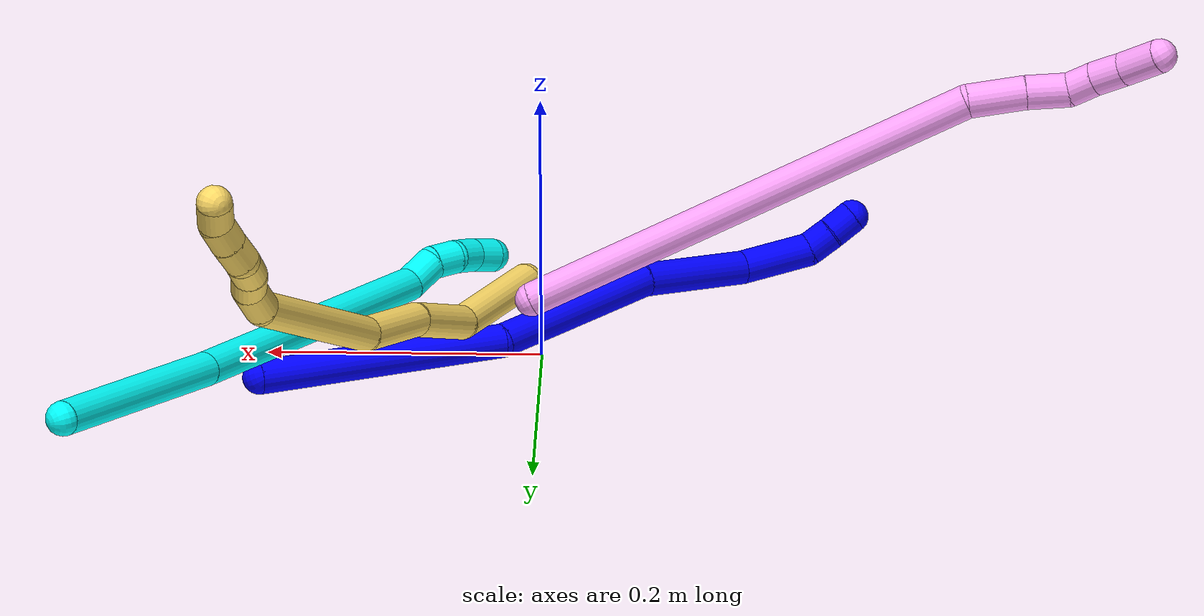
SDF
<sdf version="1.7">
 <world name="default">
  <model name="photoneo_s_sensor">
   <static>1</static>
   <pose>0 0 2 1.57079 1.57079 3.14159</pose>
   <link name="link">
    <inertial><mass>0.1</mass></inertial>
    <sensor name="sensor" type="depth">
     <update_rate>30</update_rate>
     <camera>
      <horizontal_fov>1.22</horizontal_fov>
      <image><width>1920</width><height>1200</height><format>B8G8R8</format></image>
      <clip><near>0.1</near><far>4</far></clip>
      <depth_camera><output>points</output></depth_camera>
     </camera>
     <plugin name="camera_plugin" filename="libgazebo_ros_depth_camera.so">
      <baseline>0.2</baseline>
      <alwaysOn>1</alwaysOn>
      <updateRate>0.0</updateRate>
      <cameraName>camera_ir</cameraName>
      <imageTopicName>/camera/color/image_raw</imageTopicName>
      <cameraInfoTopicName>/camera/color/camera_info</cameraInfoTopicName>
      <depthImageTopicName>/camera/depth/image_raw</depthImageTopicName>
      <depthImageCameraInfoTopicName>/camera/depth/camera_info</depthImageCameraInfoTopicName>
      <pointCloudTopicName>/camera/depth/points</pointCloudTopicName>
      <frameName>fr_optical</frameName>
      <pointCloudCutoff>0.1</pointCloudCutoff>
      <pointCloudCutoffMax>2.0</pointCloudCutoffMax>
      <distortionK1>0</distortionK1>
      <distortionK2>0</distortionK2>
      <distortionK3>0</distortionK3>
      <distortionT1>0</distortionT1>
      <distortionT2>0</distortionT2>
      <CxPrime>0</CxPrime>
      <Cx>0</Cx>
      <Cy>0</Cy>
      <focalLength>0</focalLength>
      <hackBaseline>0</hackBaseline>
     </plugin>
    </sensor>
   </link>
  </model>
  <model name="bin">
   <static>1</static>
   <link name="bottom">
    <collision name="collision-bottom">
     <pose>0 0 -0.01 0 -0 0</pose>
     <geometry><box><size>0.8 0.6 0.02</size></box></geometry>
     <surface>
      <friction><ode><mu>100</mu><mu2>100</mu2></ode></friction>
      <contact><collide_bitmask>65535</collide_bitmask></contact>
     </surface>
    </collision>
   </link>
   <link name="west_wall">
    <collision name="collision-west_wall">
     <pose>-0.41 0 0.1 0 -0 0</pose>
     <geometry><box><size>0.02 0.6 0.2</size></box></geometry>
     <surface>
      <friction><ode><mu>100</mu><mu2>100</mu2></ode></friction>
      <contact><collide_bitmask>65535</collide_bitmask></contact>
     </surface>
    </collision>
   </link>
   <link name="east_wall">
    <collision name="collision-east_wall">
     <pose>0.41 0 0.1 0 -0 0</pose>
     <geometry><box><size>0.02 0.6 0.2</size></box></geometry>
     <surface>
      <friction><ode><mu>100</mu><mu2>100</mu2></ode></friction>
      <contact><collide_bitmask>65535</collide_bitmask></contact>
     </surface>
    </collision>
   </link>
   <link name="south_wall">
    <collision name="collision-south_wall">
     <pose>0 -0.31 0.1 0 -0 0</pose>
     <geometry><box><size>0.8 0.02 0.2</size></box></geometry>
     <surface>
      <friction><ode><mu>100</mu><mu2>100</mu2></ode></friction>
      <contact><collide_bitmask>65535</collide_bitmask></contact>
     </surface>
    </collision>
   </link>
   <link name="north_wall">
    <collision name="collision-north_wall">
     <pose>0 0.31 0.1 0 -0 0</pose>
     <geometry><box><size>0.8 0.02 0.2</size></box></geometry>
     <surface>
      <friction><ode><mu>100</mu><mu2>100</mu2></ode></friction>
      <contact><collide_bitmask>65535</collide_bitmask></contact>
     </surface>
    </collision>
   </link>
  </model>
  <model name="1">
   <static>0</static>
   <link name="1">
    <collision name="collision-cylinder-e_1_1_4">
     <pose>-0.064856 -0.023432 0.061577 0.363607 -0.77753 -0.150317</pose>
     <geometry><cylinder><radius>0.0125</radius><length>0.184902</length></cylinder></geometry>
     <surface>
      <friction><ode><mu>1.16</mu><mu2>1.16</mu2><slip1>0</slip1><slip2>0</slip2></ode></friction>
      <contact><ode><kp>1e+06</kp><kd>1</kd><max_vel>0</max_vel><min_depth>0.001</min_depth></ode></contact>
     </surface>
    </collision>
    <visual name="visual-cylinder-e_1_1_4">
     <pose>-0.064856 -0.023432 0.061577 0.363607 -0.77753 -0.150317</pose>
     <geometry><cylinder><radius>0.0125</radius><length>0.184902</length></cylinder></geometry>
     <material><ambient>0 0 1 1</ambient></material>
    </visual>
    <collision name="collision-cylinder-e_2_4_5">
     <pose>-0.176876 -0.083704 0.154772 0.861557 -0.770938 -0.368718</pose>
     <geometry><cylinder><radius>0.0125</radius><length>0.135369</length></cylinder></geometry>
     <surface>
      <friction><ode><mu>1.16</mu><mu2>1.16</mu2><slip1>0</slip1><slip2>0</slip2></ode></friction>
      <contact><ode><kp>1e+06</kp><kd>1</kd><max_vel>0</max_vel><min_depth>0.001</min_depth></ode></contact>
     </surface>
    </collision>
    <visual name="visual-cylinder-e_2_4_5">
     <pose>-0.176876 -0.083704 0.154772 0.861557 -0.770938 -0.368718</pose>
     <geometry><cylinder><radius>0.0125</radius><length>0.135369</length></cylinder></geometry>
     <material><ambient>0 0 1 1</ambient></material>
    </visual>
    <collision name="collision-cylinder-e_3_5_6">
     <pose>-0.258236 -0.134458 0.207609 0.580351 -0.932403 -0.298282</pose>
     <geometry><cylinder><radius>0.0125</radius><length>0.085168</length></cylinder></geometry>
     <surface>
      <friction><ode><mu>1.16</mu><mu2>1.16</mu2><slip1>0</slip1><slip2>0</slip2></ode></friction>
      <contact><ode><kp>1e+06</kp><kd>1</kd><max_vel>0</max_vel><min_depth>0.001</min_depth></ode></contact>
     </surface>
    </collision>
    <visual name="visual-cylinder-e_3_5_6">
     <pose>-0.258236 -0.134458 0.207609 0.580351 -0.932403 -0.298282</pose>
     <geometry><cylinder><radius>0.0125</radius><length>0.085168</length></cylinder></geometry>
     <material><ambient>0 0 1 1</ambient></material>
    </visual>
    <collision name="collision-cylinder-e_4_6_7">
     <pose>-0.308448 -0.156646 0.248606 0.396243 -0.641622 -0.13322</pose>
     <geometry><cylinder><radius>0.0125</radius><length>0.053516</length></cylinder></geometry>
     <surface>
      <friction><ode><mu>1.16</mu><mu2>1.16</mu2><slip1>0</slip1><slip2>0</slip2></ode></friction>
      <contact><ode><kp>1e+06</kp><kd>1</kd><max_vel>0</max_vel><min_depth>0.001</min_depth></ode></contact>
     </surface>
    </collision>
    <visual name="visual-cylinder-e_4_6_7">
     <pose>-0.308448 -0.156646 0.248606 0.396243 -0.641622 -0.13322</pose>
     <geometry><cylinder><radius>0.0125</radius><length>0.053516</length></cylinder></geometry>
     <material><ambient>0 0 1 1</ambient></material>
    </visual>
    <collision name="collision-cylinder-e_5_7_8">
     <pose>-0.326814 -0.170002 0.277006 0.532533 -0.230727 -0.063189</pose>
     <geometry><cylinder><radius>0.0125</radius><length>0.020567</length></cylinder></geometry>
     <surface>
      <friction><ode><mu>1.16</mu><mu2>1.16</mu2><slip1>0</slip1><slip2>0</slip2></ode></friction>
      <contact><ode><kp>1e+06</kp><kd>1</kd><max_vel>0</max_vel><min_depth>0.001</min_depth></ode></contact>
     </surface>
    </collision>
    <visual name="visual-cylinder-e_5_7_8">
     <pose>-0.326814 -0.170002 0.277006 0.532533 -0.230727 -0.063189</pose>
     <geometry><cylinder><radius>0.0125</radius><length>0.020567</length></cylinder></geometry>
     <material><ambient>0 0 1 1</ambient></material>
    </visual>
    <collision name="collision-cylinder-e_6_8_2">
     <pose>-0.332005 -0.180864 0.293593 0.62787 -0.280982 -0.091768</pose>
     <geometry><cylinder><radius>0.0125</radius><length>0.020479</length></cylinder></geometry>
     <surface>
      <friction><ode><mu>1.16</mu><mu2>1.16</mu2><slip1>0</slip1><slip2>0</slip2></ode></friction>
      <contact><ode><kp>1e+06</kp><kd>1</kd><max_vel>0</max_vel><min_depth>0.001</min_depth></ode></contact>
     </surface>
    </collision>
    <visual name="visual-cylinder-e_6_8_2">
     <pose>-0.332005 -0.180864 0.293593 0.62787 -0.280982 -0.091768</pose>
     <geometry><cylinder><radius>0.0125</radius><length>0.020479</length></cylinder></geometry>
     <material><ambient>0 0 1 1</ambient></material>
    </visual>
    <collision name="collision-sphere-2">
     <pose>-0.334844 -0.186643 0.301554 0 -0 0</pose>
     <geometry><sphere><radius>0.0125</radius></sphere></geometry>
     <surface>
      <friction><ode><mu>1.16</mu><mu2>1.16</mu2><slip1>0</slip1><slip2>0</slip2></ode></friction>
      <contact><ode><kp>1e+06</kp><kd>1</kd><max_vel>0</max_vel><min_depth>0.001</min_depth></ode></contact>
     </surface>
    </collision>
    <visual name="visual-sphere-2">
     <pose>-0.334844 -0.186643 0.301554 0 -0 0</pose>
     <geometry><sphere><radius>0.0125</radius></sphere></geometry>
     <material><ambient>0 0 1 1</ambient></material>
    </visual>
    <collision name="collision-sphere-4">
     <pose>-0.129713 -0.046864 0.123155 0 -0 0</pose>
     <geometry><sphere><radius>0.0125</radius></sphere></geometry>
     <surface>
      <friction><ode><mu>1.16</mu><mu2>1.16</mu2><slip1>0</slip1><slip2>0</slip2></ode></friction>
      <contact><ode><kp>1e+06</kp><kd>1</kd><max_vel>0</max_vel><min_depth>0.001</min_depth></ode></contact>
     </surface>
    </collision>
    <visual name="visual-sphere-4">
     <pose>-0.129713 -0.046864 0.123155 0 -0 0</pose>
     <geometry><sphere><radius>0.0125</radius></sphere></geometry>
     <material><ambient>0 0 1 1</ambient></material>
    </visual>
    <collision name="collision-sphere-1">
     <geometry><sphere><radius>0.0125</radius></sphere></geometry>
     <surface>
      <friction><ode><mu>1.16</mu><mu2>1.16</mu2><slip1>0</slip1><slip2>0</slip2></ode></friction>
      <contact><ode><kp>1e+06</kp><kd>1</kd><max_vel>0</max_vel><min_depth>0.001</min_depth></ode></contact>
     </surface>
    </collision>
    <visual name="visual-sphere-1">
     <geometry><sphere><radius>0.0125</radius></sphere></geometry>
     <material><ambient>0 0 1 1</ambient></material>
    </visual>
    <collision name="collision-sphere-8">
     <pose>-0.329166 -0.175085 0.285631 0 -0 0</pose>
     <geometry><sphere><radius>0.0125</radius></sphere></geometry>
     <surface>
      <friction><ode><mu>1.16</mu><mu2>1.16</mu2><slip1>0</slip1><slip2>0</slip2></ode></friction>
      <contact><ode><kp>1e+06</kp><kd>1</kd><max_vel>0</max_vel><min_depth>0.001</min_depth></ode></contact>
     </surface>
    </collision>
    <visual name="visual-sphere-8">
     <pose>-0.329166 -0.175085 0.285631 0 -0 0</pose>
     <geometry><sphere><radius>0.0125</radius></sphere></geometry>
     <material><ambient>0 0 1 1</ambient></material>
    </visual>
    <collision name="collision-sphere-5">
     <pose>-0.224039 -0.120544 0.186388 0 -0 0</pose>
     <geometry><sphere><radius>0.0125</radius></sphere></geometry>
     <surface>
      <friction><ode><mu>1.16</mu><mu2>1.16</mu2><slip1>0</slip1><slip2>0</slip2></ode></friction>
      <contact><ode><kp>1e+06</kp><kd>1</kd><max_vel>0</max_vel><min_depth>0.001</min_depth></ode></contact>
     </surface>
    </collision>
    <visual name="visual-sphere-5">
     <pose>-0.224039 -0.120544 0.186388 0 -0 0</pose>
     <geometry><sphere><radius>0.0125</radius></sphere></geometry>
     <material><ambient>0 0 1 1</ambient></material>
    </visual>
    <collision name="collision-sphere-6">
     <pose>-0.292433 -0.148373 0.228831 0 -0 0</pose>
     <geometry><sphere><radius>0.0125</radius></sphere></geometry>
     <surface>
      <friction><ode><mu>1.16</mu><mu2>1.16</mu2><slip1>0</slip1><slip2>0</slip2></ode></friction>
      <contact><ode><kp>1e+06</kp><kd>1</kd><max_vel>0</max_vel><min_depth>0.001</min_depth></ode></contact>
     </surface>
    </collision>
    <visual name="visual-sphere-6">
     <pose>-0.292433 -0.148373 0.228831 0 -0 0</pose>
     <geometry><sphere><radius>0.0125</radius></sphere></geometry>
     <material><ambient>0 0 1 1</ambient></material>
    </visual>
    <collision name="collision-sphere-7">
     <pose>-0.324462 -0.16492 0.268382 0 -0 0</pose>
     <geometry><sphere><radius>0.0125</radius></sphere></geometry>
     <surface>
      <friction><ode><mu>1.16</mu><mu2>1.16</mu2><slip1>0</slip1><slip2>0</slip2></ode></friction>
      <contact><ode><kp>1e+06</kp><kd>1</kd><max_vel>0</max_vel><min_depth>0.001</min_depth></ode></contact>
     </surface>
    </collision>
    <visual name="visual-sphere-7">
     <pose>-0.324462 -0.16492 0.268382 0 -0 0</pose>
     <geometry><sphere><radius>0.0125</radius></sphere></geometry>
     <material><ambient>0 0 1 1</ambient></material>
    </visual>
    <inertial>
     <pose>-0.175913 -0.085397 0.150065 0 -0 0</pose>
     <mass>0.5</mass>
     <inertia>
      <ixx>0.000415</ixx>
      <ixy>0</ixy>
      <ixz>0</ixz>
      <iyy>0.000612</iyy>
      <iyz>0</iyz>
      <izz>0.000874</izz>
     </inertia>
    </inertial>
   </link>
   <pose>0.200845 0.068662 0.012153 -0.870307 -0.727832 0.724106</pose>
  </model>
  <model name="3">
   <static>0</static>
   <link name="3">
    <collision name="collision-cylinder-e_1_1_4">
     <pose>-0.026676 -0.02267 -0.071216 2.8334 -0.342832 -1.67901</pose>
     <geometry><cylinder><radius>0.0125</radius><length>0.158711</length></cylinder></geometry>
     <surface>
      <friction><ode><mu>1.16</mu><mu2>1.16</mu2><slip1>0</slip1><slip2>0</slip2></ode></friction>
      <contact><ode><kp>1e+06</kp><kd>1</kd><max_vel>0</max_vel><min_depth>0.001</min_depth></ode></contact>
     </surface>
    </collision>
    <visual name="visual-cylinder-e_1_1_4">
     <pose>-0.026676 -0.02267 -0.071216 2.8334 -0.342832 -1.67901</pose>
     <geometry><cylinder><radius>0.0125</radius><length>0.158711</length></cylinder></geometry>
     <material><ambient>0.003922 1 0.996078 1</ambient></material>
    </visual>
    <collision name="collision-cylinder-e_2_4_5">
     <pose>-0.099952 -0.078446 -0.255698 2.85723 -0.376103 -1.85177</pose>
     <geometry><cylinder><radius>0.0125</radius><length>0.253746</length></cylinder></geometry>
     <surface>
      <friction><ode><mu>1.16</mu><mu2>1.16</mu2><slip1>0</slip1><slip2>0</slip2></ode></friction>
      <contact><ode><kp>1e+06</kp><kd>1</kd><max_vel>0</max_vel><min_depth>0.001</min_depth></ode></contact>
     </surface>
    </collision>
    <visual name="visual-cylinder-e_2_4_5">
     <pose>-0.099952 -0.078446 -0.255698 2.85723 -0.376103 -1.85177</pose>
     <geometry><cylinder><radius>0.0125</radius><length>0.253746</length></cylinder></geometry>
     <material><ambient>0.003922 1 0.996078 1</ambient></material>
    </visual>
    <collision name="collision-cylinder-e_3_5_6">
     <pose>-0.150596 -0.108515 -0.381016 -2.89473 -0.314566 1.81393</pose>
     <geometry><cylinder><radius>0.0125</radius><length>0.026141</length></cylinder></geometry>
     <surface>
      <friction><ode><mu>1.16</mu><mu2>1.16</mu2><slip1>0</slip1><slip2>0</slip2></ode></friction>
      <contact><ode><kp>1e+06</kp><kd>1</kd><max_vel>0</max_vel><min_depth>0.001</min_depth></ode></contact>
     </surface>
    </collision>
    <visual name="visual-cylinder-e_3_5_6">
     <pose>-0.150596 -0.108515 -0.381016 -2.89473 -0.314566 1.81393</pose>
     <geometry><cylinder><radius>0.0125</radius><length>0.026141</length></cylinder></geometry>
     <material><ambient>0.003922 1 0.996078 1</ambient></material>
    </visual>
    <collision name="collision-cylinder-e_4_6_7">
     <pose>-0.155226 -0.106755 -0.403553 3.02032 -0.055401 -0.856309</pose>
     <geometry><cylinder><radius>0.0125</radius><length>0.021156</length></cylinder></geometry>
     <surface>
      <friction><ode><mu>1.16</mu><mu2>1.16</mu2><slip1>0</slip1><slip2>0</slip2></ode></friction>
      <contact><ode><kp>1e+06</kp><kd>1</kd><max_vel>0</max_vel><min_depth>0.001</min_depth></ode></contact>
     </surface>
    </collision>
    <visual name="visual-cylinder-e_4_6_7">
     <pose>-0.155226 -0.106755 -0.403553 3.02032 -0.055401 -0.856309</pose>
     <geometry><cylinder><radius>0.0125</radius><length>0.021156</length></cylinder></geometry>
     <material><ambient>0.003922 1 0.996078 1</ambient></material>
    </visual>
    <collision name="collision-cylinder-e_5_7_8">
     <pose>-0.158164 -0.111864 -0.422989 2.73721 -0.237031 -1.05247</pose>
     <geometry><cylinder><radius>0.0125</radius><length>0.020035</length></cylinder></geometry>
     <surface>
      <friction><ode><mu>1.16</mu><mu2>1.16</mu2><slip1>0</slip1><slip2>0</slip2></ode></friction>
      <contact><ode><kp>1e+06</kp><kd>1</kd><max_vel>0</max_vel><min_depth>0.001</min_depth></ode></contact>
     </surface>
    </collision>
    <visual name="visual-cylinder-e_5_7_8">
     <pose>-0.158164 -0.111864 -0.422989 2.73721 -0.237031 -1.05247</pose>
     <geometry><cylinder><radius>0.0125</radius><length>0.020035</length></cylinder></geometry>
     <material><ambient>0.003922 1 0.996078 1</ambient></material>
    </visual>
    <collision name="collision-cylinder-e_6_8_2">
     <pose>-0.161046 -0.119484 -0.441295 2.7568 -0.052491 -0.267899</pose>
     <geometry><cylinder><radius>0.0125</radius><length>0.020212</length></cylinder></geometry>
     <surface>
      <friction><ode><mu>1.16</mu><mu2>1.16</mu2><slip1>0</slip1><slip2>0</slip2></ode></friction>
      <contact><ode><kp>1e+06</kp><kd>1</kd><max_vel>0</max_vel><min_depth>0.001</min_depth></ode></contact>
     </surface>
    </collision>
    <visual name="visual-cylinder-e_6_8_2">
     <pose>-0.161046 -0.119484 -0.441295 2.7568 -0.052491 -0.267899</pose>
     <geometry><cylinder><radius>0.0125</radius><length>0.020212</length></cylinder></geometry>
     <material><ambient>0.003922 1 0.996078 1</ambient></material>
    </visual>
    <collision name="collision-sphere-2">
     <pose>-0.161577 -0.123272 -0.450649 0 -0 0</pose>
     <geometry><sphere><radius>0.0125</radius></sphere></geometry>
     <surface>
      <friction><ode><mu>1.16</mu><mu2>1.16</mu2><slip1>0</slip1><slip2>0</slip2></ode></friction>
      <contact><ode><kp>1e+06</kp><kd>1</kd><max_vel>0</max_vel><min_depth>0.001</min_depth></ode></contact>
     </surface>
    </collision>
    <visual name="visual-sphere-2">
     <pose>-0.161577 -0.123272 -0.450649 0 -0 0</pose>
     <geometry><sphere><radius>0.0125</radius></sphere></geometry>
     <material><ambient>0.003922 1 0.996078 1</ambient></material>
    </visual>
    <collision name="collision-sphere-4">
     <pose>-0.053352 -0.045341 -0.142432 0 -0 0</pose>
     <geometry><sphere><radius>0.0125</radius></sphere></geometry>
     <surface>
      <friction><ode><mu>1.16</mu><mu2>1.16</mu2><slip1>0</slip1><slip2>0</slip2></ode></friction>
      <contact><ode><kp>1e+06</kp><kd>1</kd><max_vel>0</max_vel><min_depth>0.001</min_depth></ode></contact>
     </surface>
    </collision>
    <visual name="visual-sphere-4">
     <pose>-0.053352 -0.045341 -0.142432 0 -0 0</pose>
     <geometry><sphere><radius>0.0125</radius></sphere></geometry>
     <material><ambient>0.003922 1 0.996078 1</ambient></material>
    </visual>
    <collision name="collision-sphere-1">
     <geometry><sphere><radius>0.0125</radius></sphere></geometry>
     <surface>
      <friction><ode><mu>1.16</mu><mu2>1.16</mu2><slip1>0</slip1><slip2>0</slip2></ode></friction>
      <contact><ode><kp>1e+06</kp><kd>1</kd><max_vel>0</max_vel><min_depth>0.001</min_depth></ode></contact>
     </surface>
    </collision>
    <visual name="visual-sphere-1">
     <geometry><sphere><radius>0.0125</radius></sphere></geometry>
     <material><ambient>0.003922 1 0.996078 1</ambient></material>
    </visual>
    <collision name="collision-sphere-8">
     <pose>-0.160516 -0.115695 -0.431941 0 -0 0</pose>
     <geometry><sphere><radius>0.0125</radius></sphere></geometry>
     <surface>
      <friction><ode><mu>1.16</mu><mu2>1.16</mu2><slip1>0</slip1><slip2>0</slip2></ode></friction>
      <contact><ode><kp>1e+06</kp><kd>1</kd><max_vel>0</max_vel><min_depth>0.001</min_depth></ode></contact>
     </surface>
    </collision>
    <visual name="visual-sphere-8">
     <pose>-0.160516 -0.115695 -0.431941 0 -0 0</pose>
     <geometry><sphere><radius>0.0125</radius></sphere></geometry>
     <material><ambient>0.003922 1 0.996078 1</ambient></material>
    </visual>
    <collision name="collision-sphere-5">
     <pose>-0.146552 -0.111552 -0.368964 0 -0 0</pose>
     <geometry><sphere><radius>0.0125</radius></sphere></geometry>
     <surface>
      <friction><ode><mu>1.16</mu><mu2>1.16</mu2><slip1>0</slip1><slip2>0</slip2></ode></friction>
      <contact><ode><kp>1e+06</kp><kd>1</kd><max_vel>0</max_vel><min_depth>0.001</min_depth></ode></contact>
     </surface>
    </collision>
    <visual name="visual-sphere-5">
     <pose>-0.146552 -0.111552 -0.368964 0 -0 0</pose>
     <geometry><sphere><radius>0.0125</radius></sphere></geometry>
     <material><ambient>0.003922 1 0.996078 1</ambient></material>
    </visual>
    <collision name="collision-sphere-6">
     <pose>-0.15464 -0.105478 -0.393068 0 -0 0</pose>
     <geometry><sphere><radius>0.0125</radius></sphere></geometry>
     <surface>
      <friction><ode><mu>1.16</mu><mu2>1.16</mu2><slip1>0</slip1><slip2>0</slip2></ode></friction>
      <contact><ode><kp>1e+06</kp><kd>1</kd><max_vel>0</max_vel><min_depth>0.001</min_depth></ode></contact>
     </surface>
    </collision>
    <visual name="visual-sphere-6">
     <pose>-0.15464 -0.105478 -0.393068 0 -0 0</pose>
     <geometry><sphere><radius>0.0125</radius></sphere></geometry>
     <material><ambient>0.003922 1 0.996078 1</ambient></material>
    </visual>
    <collision name="collision-sphere-7">
     <pose>-0.155812 -0.108033 -0.414037 0 -0 0</pose>
     <geometry><sphere><radius>0.0125</radius></sphere></geometry>
     <surface>
      <friction><ode><mu>1.16</mu><mu2>1.16</mu2><slip1>0</slip1><slip2>0</slip2></ode></friction>
      <contact><ode><kp>1e+06</kp><kd>1</kd><max_vel>0</max_vel><min_depth>0.001</min_depth></ode></contact>
     </surface>
    </collision>
    <visual name="visual-sphere-7">
     <pose>-0.155812 -0.108033 -0.414037 0 -0 0</pose>
     <geometry><sphere><radius>0.0125</radius></sphere></geometry>
     <material><ambient>0.003922 1 0.996078 1</ambient></material>
    </visual>
    <inertial>
     <pose>-0.086481 -0.06651 -0.224153 0 -0 0</pose>
     <mass>0.5</mass>
     <inertia>
      <ixx>-0.001942</ixx>
      <ixy>0</ixy>
      <ixz>0</ixz>
      <iyy>-0.000985</iyy>
      <iyz>0</iyz>
      <izz>0.001039</izz>
     </inertia>
    </inertial>
   </link>
   <pose>0.321296 0.254884 0.066934 1.64162 0.216056 2.16824</pose>
  </model>
  <model name="4">
   <static>0</static>
   <link name="4">
    <collision name="collision-cylinder-e_1_1_4">
     <pose>-0.005192 0.023722 0.173768 -0.135679 -0.029596 0.002011</pose>
     <geometry><cylinder><radius>0.0125</radius><length>0.350912</length></cylinder></geometry>
     <surface>
      <friction><ode><mu>1.16</mu><mu2>1.16</mu2><slip1>0</slip1><slip2>0</slip2></ode></friction>
      <contact><ode><kp>1e+06</kp><kd>1</kd><max_vel>0</max_vel><min_depth>0.001</min_depth></ode></contact>
     </surface>
    </collision>
    <visual name="visual-cylinder-e_1_1_4">
     <pose>-0.005192 0.023722 0.173768 -0.135679 -0.029596 0.002011</pose>
     <geometry><cylinder><radius>0.0125</radius><length>0.350912</length></cylinder></geometry>
     <material><ambient>1 0.65098 0.996078 1</ambient></material>
    </visual>
    <collision name="collision-cylinder-e_2_4_5">
     <pose>-0.018049 0.050058 0.36716 -0.132366 -0.369391 0.024764</pose>
     <geometry><cylinder><radius>0.0125</radius><length>0.042461</length></cylinder></geometry>
     <surface>
      <friction><ode><mu>1.16</mu><mu2>1.16</mu2><slip1>0</slip1><slip2>0</slip2></ode></friction>
      <contact><ode><kp>1e+06</kp><kd>1</kd><max_vel>0</max_vel><min_depth>0.001</min_depth></ode></contact>
     </surface>
    </collision>
    <visual name="visual-cylinder-e_2_4_5">
     <pose>-0.018049 0.050058 0.36716 -0.132366 -0.369391 0.024764</pose>
     <geometry><cylinder><radius>0.0125</radius><length>0.042461</length></cylinder></geometry>
     <material><ambient>1 0.65098 0.996078 1</ambient></material>
    </visual>
    <collision name="collision-cylinder-e_3_5_6">
     <pose>-0.032278 0.055611 0.400812 -0.206588 -0.429464 0.045209</pose>
     <geometry><cylinder><radius>0.0125</radius><length>0.031526</length></cylinder></geometry>
     <surface>
      <friction><ode><mu>1.16</mu><mu2>1.16</mu2><slip1>0</slip1><slip2>0</slip2></ode></friction>
      <contact><ode><kp>1e+06</kp><kd>1</kd><max_vel>0</max_vel><min_depth>0.001</min_depth></ode></contact>
     </surface>
    </collision>
    <visual name="visual-cylinder-e_3_5_6">
     <pose>-0.032278 0.055611 0.400812 -0.206588 -0.429464 0.045209</pose>
     <geometry><cylinder><radius>0.0125</radius><length>0.031526</length></cylinder></geometry>
     <material><ambient>1 0.65098 0.996078 1</ambient></material>
    </visual>
    <collision name="collision-cylinder-e_4_6_7">
     <pose>-0.038403 0.061316 0.424866 -0.269156 0.042152 -0.005708</pose>
     <geometry><cylinder><radius>0.0125</radius><length>0.020822</length></cylinder></geometry>
     <surface>
      <friction><ode><mu>1.16</mu><mu2>1.16</mu2><slip1>0</slip1><slip2>0</slip2></ode></friction>
      <contact><ode><kp>1e+06</kp><kd>1</kd><max_vel>0</max_vel><min_depth>0.001</min_depth></ode></contact>
     </surface>
    </collision>
    <visual name="visual-cylinder-e_4_6_7">
     <pose>-0.038403 0.061316 0.424866 -0.269156 0.042152 -0.005708</pose>
     <geometry><cylinder><radius>0.0125</radius><length>0.020822</length></cylinder></geometry>
     <material><ambient>1 0.65098 0.996078 1</ambient></material>
    </visual>
    <collision name="collision-cylinder-e_5_7_8">
     <pose>-0.037383 0.06902 0.445756 -0.426618 0.048696 -0.01055</pose>
     <geometry><cylinder><radius>0.0125</radius><length>0.023893</length></cylinder></geometry>
     <surface>
      <friction><ode><mu>1.16</mu><mu2>1.16</mu2><slip1>0</slip1><slip2>0</slip2></ode></friction>
      <contact><ode><kp>1e+06</kp><kd>1</kd><max_vel>0</max_vel><min_depth>0.001</min_depth></ode></contact>
     </surface>
    </collision>
    <visual name="visual-cylinder-e_5_7_8">
     <pose>-0.037383 0.06902 0.445756 -0.426618 0.048696 -0.01055</pose>
     <geometry><cylinder><radius>0.0125</radius><length>0.023893</length></cylinder></geometry>
     <material><ambient>1 0.65098 0.996078 1</ambient></material>
    </visual>
    <collision name="collision-cylinder-e_6_8_2">
     <pose>-0.03478 0.081121 0.469864 -0.495822 0.133438 -0.033823</pose>
     <geometry><cylinder><radius>0.0125</radius><length>0.030386</length></cylinder></geometry>
     <surface>
      <friction><ode><mu>1.16</mu><mu2>1.16</mu2><slip1>0</slip1><slip2>0</slip2></ode></friction>
      <contact><ode><kp>1e+06</kp><kd>1</kd><max_vel>0</max_vel><min_depth>0.001</min_depth></ode></contact>
     </surface>
    </collision>
    <visual name="visual-cylinder-e_6_8_2">
     <pose>-0.03478 0.081121 0.469864 -0.495822 0.133438 -0.033823</pose>
     <geometry><cylinder><radius>0.0125</radius><length>0.030386</length></cylinder></geometry>
     <material><ambient>1 0.65098 0.996078 1</ambient></material>
    </visual>
    <collision name="collision-sphere-2">
     <pose>-0.032758 0.088285 0.483108 0 -0 0</pose>
     <geometry><sphere><radius>0.0125</radius></sphere></geometry>
     <surface>
      <friction><ode><mu>1.16</mu><mu2>1.16</mu2><slip1>0</slip1><slip2>0</slip2></ode></friction>
      <contact><ode><kp>1e+06</kp><kd>1</kd><max_vel>0</max_vel><min_depth>0.001</min_depth></ode></contact>
     </surface>
    </collision>
    <visual name="visual-sphere-2">
     <pose>-0.032758 0.088285 0.483108 0 -0 0</pose>
     <geometry><sphere><radius>0.0125</radius></sphere></geometry>
     <material><ambient>1 0.65098 0.996078 1</ambient></material>
    </visual>
    <collision name="collision-sphere-4">
     <pose>-0.010384 0.047445 0.347535 0 -0 0</pose>
     <geometry><sphere><radius>0.0125</radius></sphere></geometry>
     <surface>
      <friction><ode><mu>1.16</mu><mu2>1.16</mu2><slip1>0</slip1><slip2>0</slip2></ode></friction>
      <contact><ode><kp>1e+06</kp><kd>1</kd><max_vel>0</max_vel><min_depth>0.001</min_depth></ode></contact>
     </surface>
    </collision>
    <visual name="visual-sphere-4">
     <pose>-0.010384 0.047445 0.347535 0 -0 0</pose>
     <geometry><sphere><radius>0.0125</radius></sphere></geometry>
     <material><ambient>1 0.65098 0.996078 1</ambient></material>
    </visual>
    <collision name="collision-sphere-1">
     <geometry><sphere><radius>0.0125</radius></sphere></geometry>
     <surface>
      <friction><ode><mu>1.16</mu><mu2>1.16</mu2><slip1>0</slip1><slip2>0</slip2></ode></friction>
      <contact><ode><kp>1e+06</kp><kd>1</kd><max_vel>0</max_vel><min_depth>0.001</min_depth></ode></contact>
     </surface>
    </collision>
    <visual name="visual-sphere-1">
     <geometry><sphere><radius>0.0125</radius></sphere></geometry>
     <material><ambient>1 0.65098 0.996078 1</ambient></material>
    </visual>
    <collision name="collision-sphere-8">
     <pose>-0.036801 0.073957 0.456619 0 -0 0</pose>
     <geometry><sphere><radius>0.0125</radius></sphere></geometry>
     <surface>
      <friction><ode><mu>1.16</mu><mu2>1.16</mu2><slip1>0</slip1><slip2>0</slip2></ode></friction>
      <contact><ode><kp>1e+06</kp><kd>1</kd><max_vel>0</max_vel><min_depth>0.001</min_depth></ode></contact>
     </surface>
    </collision>
    <visual name="visual-sphere-8">
     <pose>-0.036801 0.073957 0.456619 0 -0 0</pose>
     <geometry><sphere><radius>0.0125</radius></sphere></geometry>
     <material><ambient>1 0.65098 0.996078 1</ambient></material>
    </visual>
    <collision name="collision-sphere-5">
     <pose>-0.025715 0.052671 0.386786 0 -0 0</pose>
     <geometry><sphere><radius>0.0125</radius></sphere></geometry>
     <surface>
      <friction><ode><mu>1.16</mu><mu2>1.16</mu2><slip1>0</slip1><slip2>0</slip2></ode></friction>
      <contact><ode><kp>1e+06</kp><kd>1</kd><max_vel>0</max_vel><min_depth>0.001</min_depth></ode></contact>
     </surface>
    </collision>
    <visual name="visual-sphere-5">
     <pose>-0.025715 0.052671 0.386786 0 -0 0</pose>
     <geometry><sphere><radius>0.0125</radius></sphere></geometry>
     <material><ambient>1 0.65098 0.996078 1</ambient></material>
    </visual>
    <collision name="collision-sphere-6">
     <pose>-0.038841 0.05855 0.414839 0 -0 0</pose>
     <geometry><sphere><radius>0.0125</radius></sphere></geometry>
     <surface>
      <friction><ode><mu>1.16</mu><mu2>1.16</mu2><slip1>0</slip1><slip2>0</slip2></ode></friction>
      <contact><ode><kp>1e+06</kp><kd>1</kd><max_vel>0</max_vel><min_depth>0.001</min_depth></ode></contact>
     </surface>
    </collision>
    <visual name="visual-sphere-6">
     <pose>-0.038841 0.05855 0.414839 0 -0 0</pose>
     <geometry><sphere><radius>0.0125</radius></sphere></geometry>
     <material><ambient>1 0.65098 0.996078 1</ambient></material>
    </visual>
    <collision name="collision-sphere-7">
     <pose>-0.037964 0.064082 0.434894 0 -0 0</pose>
     <geometry><sphere><radius>0.0125</radius></sphere></geometry>
     <surface>
      <friction><ode><mu>1.16</mu><mu2>1.16</mu2><slip1>0</slip1><slip2>0</slip2></ode></friction>
      <contact><ode><kp>1e+06</kp><kd>1</kd><max_vel>0</max_vel><min_depth>0.001</min_depth></ode></contact>
     </surface>
    </collision>
    <visual name="visual-sphere-7">
     <pose>-0.037964 0.064082 0.434894 0 -0 0</pose>
     <geometry><sphere><radius>0.0125</radius></sphere></geometry>
     <material><ambient>1 0.65098 0.996078 1</ambient></material>
    </visual>
    <inertial>
     <pose>-0.012711 0.035188 0.245955 0 -0 0</pose>
     <mass>0.5</mass>
     <inertia>
      <ixx>0.003636</ixx>
      <ixy>0</ixy>
      <ixz>0</ixz>
      <iyy>0.003614</iyy>
      <iyz>0</iyz>
      <izz>-0.000345</izz>
     </inertia>
    </inertial>
   </link>
   <pose>0.007553 -0.014627 0.0378 -0.253186 -1.035 0.456102</pose>
  </model>
  <model name="5">
   <static>0</static>
   <link name="5">
    <collision name="collision-cylinder-e_1_1_4">
     <pose>-0.004871 0.042871 0.023183 -1.07507 -0.099612 0.059409</pose>
     <geometry><cylinder><radius>0.0125</radius><length>0.097962</length></cylinder></geometry>
     <surface>
      <friction><ode><mu>1.16</mu><mu2>1.16</mu2><slip1>0</slip1><slip2>0</slip2></ode></friction>
      <contact><ode><kp>1e+06</kp><kd>1</kd><max_vel>0</max_vel><min_depth>0.001</min_depth></ode></contact>
     </surface>
    </collision>
    <visual name="visual-cylinder-e_1_1_4">
     <pose>-0.004871 0.042871 0.023183 -1.07507 -0.099612 0.059409</pose>
     <geometry><cylinder><radius>0.0125</radius><length>0.097962</length></cylinder></geometry>
     <material><ambient>1 0.858824 0.4 1</ambient></material>
    </visual>
    <collision name="collision-cylinder-e_2_4_5">
     <pose>-0.001833 0.114068 0.059113 -1.14792 0.249313 -0.161686</pose>
     <geometry><cylinder><radius>0.0125</radius><length>0.064106</length></cylinder></geometry>
     <surface>
      <friction><ode><mu>1.16</mu><mu2>1.16</mu2><slip1>0</slip1><slip2>0</slip2></ode></friction>
      <contact><ode><kp>1e+06</kp><kd>1</kd><max_vel>0</max_vel><min_depth>0.001</min_depth></ode></contact>
     </surface>
    </collision>
    <visual name="visual-cylinder-e_2_4_5">
     <pose>-0.001833 0.114068 0.059113 -1.14792 0.249313 -0.161686</pose>
     <geometry><cylinder><radius>0.0125</radius><length>0.064106</length></cylinder></geometry>
     <material><ambient>1 0.858824 0.4 1</ambient></material>
    </visual>
    <collision name="collision-cylinder-e_3_5_6">
     <pose>0.008233 0.172526 0.086319 -1.12341 0.064476 -0.040585</pose>
     <geometry><cylinder><radius>0.0125</radius><length>0.066983</length></cylinder></geometry>
     <surface>
      <friction><ode><mu>1.16</mu><mu2>1.16</mu2><slip1>0</slip1><slip2>0</slip2></ode></friction>
      <contact><ode><kp>1e+06</kp><kd>1</kd><max_vel>0</max_vel><min_depth>0.001</min_depth></ode></contact>
     </surface>
    </collision>
    <visual name="visual-cylinder-e_3_5_6">
     <pose>0.008233 0.172526 0.086319 -1.12341 0.064476 -0.040585</pose>
     <geometry><cylinder><radius>0.0125</radius><length>0.066983</length></cylinder></geometry>
     <material><ambient>1 0.858824 0.4 1</ambient></material>
    </visual>
    <collision name="collision-cylinder-e_4_6_7">
     <pose>0.034263 0.262577 0.128618 -1.13583 0.346712 -0.222534</pose>
     <geometry><cylinder><radius>0.0125</radius><length>0.1405</length></cylinder></geometry>
     <surface>
      <friction><ode><mu>1.16</mu><mu2>1.16</mu2><slip1>0</slip1><slip2>0</slip2></ode></friction>
      <contact><ode><kp>1e+06</kp><kd>1</kd><max_vel>0</max_vel><min_depth>0.001</min_depth></ode></contact>
     </surface>
    </collision>
    <visual name="visual-cylinder-e_4_6_7">
     <pose>0.034263 0.262577 0.128618 -1.13583 0.346712 -0.222534</pose>
     <geometry><cylinder><radius>0.0125</radius><length>0.1405</length></cylinder></geometry>
     <material><ambient>1 0.858824 0.4 1</ambient></material>
    </visual>
    <collision name="collision-cylinder-e_5_7_8">
     <pose>0.067433 0.330923 0.161875 -0.999617 0.74814 -0.422319</pose>
     <geometry><cylinder><radius>0.0125</radius><length>0.027339</length></cylinder></geometry>
     <surface>
      <friction><ode><mu>1.16</mu><mu2>1.16</mu2><slip1>0</slip1><slip2>0</slip2></ode></friction>
      <contact><ode><kp>1e+06</kp><kd>1</kd><max_vel>0</max_vel><min_depth>0.001</min_depth></ode></contact>
     </surface>
    </collision>
    <visual name="visual-cylinder-e_5_7_8">
     <pose>0.067433 0.330923 0.161875 -0.999617 0.74814 -0.422319</pose>
     <geometry><cylinder><radius>0.0125</radius><length>0.027339</length></cylinder></geometry>
     <material><ambient>1 0.858824 0.4 1</ambient></material>
    </visual>
    <collision name="collision-cylinder-e_6_8_9">
     <pose>0.08373 0.343226 0.174202 -0.510979 0.723518 -0.197041</pose>
     <geometry><cylinder><radius>0.0125</radius><length>0.02114</length></cylinder></geometry>
     <surface>
      <friction><ode><mu>1.16</mu><mu2>1.16</mu2><slip1>0</slip1><slip2>0</slip2></ode></friction>
      <contact><ode><kp>1e+06</kp><kd>1</kd><max_vel>0</max_vel><min_depth>0.001</min_depth></ode></contact>
     </surface>
    </collision>
    <visual name="visual-cylinder-e_6_8_9">
     <pose>0.08373 0.343226 0.174202 -0.510979 0.723518 -0.197041</pose>
     <geometry><cylinder><radius>0.0125</radius><length>0.02114</length></cylinder></geometry>
     <material><ambient>1 0.858824 0.4 1</ambient></material>
    </visual>
    <collision name="collision-cylinder-e_7_9_10">
     <pose>0.097447 0.353477 0.186964 -0.82832 0.660203 -0.298991</pose>
     <geometry><cylinder><radius>0.0125</radius><length>0.021914</length></cylinder></geometry>
     <surface>
      <friction><ode><mu>1.16</mu><mu2>1.16</mu2><slip1>0</slip1><slip2>0</slip2></ode></friction>
      <contact><ode><kp>1e+06</kp><kd>1</kd><max_vel>0</max_vel><min_depth>0.001</min_depth></ode></contact>
     </surface>
    </collision>
    <visual name="visual-cylinder-e_7_9_10">
     <pose>0.097447 0.353477 0.186964 -0.82832 0.660203 -0.298991</pose>
     <geometry><cylinder><radius>0.0125</radius><length>0.021914</length></cylinder></geometry>
     <material><ambient>1 0.858824 0.4 1</ambient></material>
    </visual>
    <collision name="collision-cylinder-e_8_10_11">
     <pose>0.111711 0.36624 0.194449 -1.32033 0.852689 -0.678034</pose>
     <geometry><cylinder><radius>0.0125</radius><length>0.020036</length></cylinder></geometry>
     <surface>
      <friction><ode><mu>1.16</mu><mu2>1.16</mu2><slip1>0</slip1><slip2>0</slip2></ode></friction>
      <contact><ode><kp>1e+06</kp><kd>1</kd><max_vel>0</max_vel><min_depth>0.001</min_depth></ode></contact>
     </surface>
    </collision>
    <visual name="visual-cylinder-e_8_10_11">
     <pose>0.111711 0.36624 0.194449 -1.32033 0.852689 -0.678034</pose>
     <geometry><cylinder><radius>0.0125</radius><length>0.020036</length></cylinder></geometry>
     <material><ambient>1 0.858824 0.4 1</ambient></material>
    </visual>
    <collision name="collision-cylinder-e_9_11_12">
     <pose>0.127141 0.378556 0.197719 -1.30156 0.908284 -0.711775</pose>
     <geometry><cylinder><radius>0.0125</radius><length>0.020005</length></cylinder></geometry>
     <surface>
      <friction><ode><mu>1.16</mu><mu2>1.16</mu2><slip1>0</slip1><slip2>0</slip2></ode></friction>
      <contact><ode><kp>1e+06</kp><kd>1</kd><max_vel>0</max_vel><min_depth>0.001</min_depth></ode></contact>
     </surface>
    </collision>
    <visual name="visual-cylinder-e_9_11_12">
     <pose>0.127141 0.378556 0.197719 -1.30156 0.908284 -0.711775</pose>
     <geometry><cylinder><radius>0.0125</radius><length>0.020005</length></cylinder></geometry>
     <material><ambient>1 0.858824 0.4 1</ambient></material>
    </visual>
    <collision name="collision-cylinder-e_10_12_2">
     <pose>0.143514 0.387596 0.203652 -0.626393 1.01224 -0.355226</pose>
     <geometry><cylinder><radius>0.0125</radius><length>0.020016</length></cylinder></geometry>
     <surface>
      <friction><ode><mu>1.16</mu><mu2>1.16</mu2><slip1>0</slip1><slip2>0</slip2></ode></friction>
      <contact><ode><kp>1e+06</kp><kd>1</kd><max_vel>0</max_vel><min_depth>0.001</min_depth></ode></contact>
     </surface>
    </collision>
    <visual name="visual-cylinder-e_10_12_2">
     <pose>0.143514 0.387596 0.203652 -0.626393 1.01224 -0.355226</pose>
     <geometry><cylinder><radius>0.0125</radius><length>0.020016</length></cylinder></geometry>
     <material><ambient>1 0.858824 0.4 1</ambient></material>
    </visual>
    <collision name="collision-sphere-2">
     <pose>0.152001 0.390705 0.207949 0 -0 0</pose>
     <geometry><sphere><radius>0.0125</radius></sphere></geometry>
     <surface>
      <friction><ode><mu>1.16</mu><mu2>1.16</mu2><slip1>0</slip1><slip2>0</slip2></ode></friction>
      <contact><ode><kp>1e+06</kp><kd>1</kd><max_vel>0</max_vel><min_depth>0.001</min_depth></ode></contact>
     </surface>
    </collision>
    <visual name="visual-sphere-2">
     <pose>0.152001 0.390705 0.207949 0 -0 0</pose>
     <geometry><sphere><radius>0.0125</radius></sphere></geometry>
     <material><ambient>1 0.858824 0.4 1</ambient></material>
    </visual>
    <collision name="collision-sphere-12">
     <pose>0.135027 0.384487 0.199356 0 -0 0</pose>
     <geometry><sphere><radius>0.0125</radius></sphere></geometry>
     <surface>
      <friction><ode><mu>1.16</mu><mu2>1.16</mu2><slip1>0</slip1><slip2>0</slip2></ode></friction>
      <contact><ode><kp>1e+06</kp><kd>1</kd><max_vel>0</max_vel><min_depth>0.001</min_depth></ode></contact>
     </surface>
    </collision>
    <visual name="visual-sphere-12">
     <pose>0.135027 0.384487 0.199356 0 -0 0</pose>
     <geometry><sphere><radius>0.0125</radius></sphere></geometry>
     <material><ambient>1 0.858824 0.4 1</ambient></material>
    </visual>
    <collision name="collision-sphere-11">
     <pose>0.119255 0.372625 0.196083 0 -0 0</pose>
     <geometry><sphere><radius>0.0125</radius></sphere></geometry>
     <surface>
      <friction><ode><mu>1.16</mu><mu2>1.16</mu2><slip1>0</slip1><slip2>0</slip2></ode></friction>
      <contact><ode><kp>1e+06</kp><kd>1</kd><max_vel>0</max_vel><min_depth>0.001</min_depth></ode></contact>
     </surface>
    </collision>
    <visual name="visual-sphere-11">
     <pose>0.119255 0.372625 0.196083 0 -0 0</pose>
     <geometry><sphere><radius>0.0125</radius></sphere></geometry>
     <material><ambient>1 0.858824 0.4 1</ambient></material>
    </visual>
    <collision name="collision-sphere-10">
     <pose>0.104167 0.359854 0.192815 0 -0 0</pose>
     <geometry><sphere><radius>0.0125</radius></sphere></geometry>
     <surface>
      <friction><ode><mu>1.16</mu><mu2>1.16</mu2><slip1>0</slip1><slip2>0</slip2></ode></friction>
      <contact><ode><kp>1e+06</kp><kd>1</kd><max_vel>0</max_vel><min_depth>0.001</min_depth></ode></contact>
     </surface>
    </collision>
    <visual name="visual-sphere-10">
     <pose>0.104167 0.359854 0.192815 0 -0 0</pose>
     <geometry><sphere><radius>0.0125</radius></sphere></geometry>
     <material><ambient>1 0.858824 0.4 1</ambient></material>
    </visual>
    <collision name="collision-sphere-9">
     <pose>0.090727 0.3471 0.181112 0 -0 0</pose>
     <geometry><sphere><radius>0.0125</radius></sphere></geometry>
     <surface>
      <friction><ode><mu>1.16</mu><mu2>1.16</mu2><slip1>0</slip1><slip2>0</slip2></ode></friction>
      <contact><ode><kp>1e+06</kp><kd>1</kd><max_vel>0</max_vel><min_depth>0.001</min_depth></ode></contact>
     </surface>
    </collision>
    <visual name="visual-sphere-9">
     <pose>0.090727 0.3471 0.181112 0 -0 0</pose>
     <geometry><sphere><radius>0.0125</radius></sphere></geometry>
     <material><ambient>1 0.858824 0.4 1</ambient></material>
    </visual>
    <collision name="collision-sphere-4">
     <pose>-0.009742 0.085742 0.046366 0 -0 0</pose>
     <geometry><sphere><radius>0.0125</radius></sphere></geometry>
     <surface>
      <friction><ode><mu>1.16</mu><mu2>1.16</mu2><slip1>0</slip1><slip2>0</slip2></ode></friction>
      <contact><ode><kp>1e+06</kp><kd>1</kd><max_vel>0</max_vel><min_depth>0.001</min_depth></ode></contact>
     </surface>
    </collision>
    <visual name="visual-sphere-4">
     <pose>-0.009742 0.085742 0.046366 0 -0 0</pose>
     <geometry><sphere><radius>0.0125</radius></sphere></geometry>
     <material><ambient>1 0.858824 0.4 1</ambient></material>
    </visual>
    <collision name="collision-sphere-1">
     <geometry><sphere><radius>0.0125</radius></sphere></geometry>
     <surface>
      <friction><ode><mu>1.16</mu><mu2>1.16</mu2><slip1>0</slip1><slip2>0</slip2></ode></friction>
      <contact><ode><kp>1e+06</kp><kd>1</kd><max_vel>0</max_vel><min_depth>0.001</min_depth></ode></contact>
     </surface>
    </collision>
    <visual name="visual-sphere-1">
     <geometry><sphere><radius>0.0125</radius></sphere></geometry>
     <material><ambient>1 0.858824 0.4 1</ambient></material>
    </visual>
    <collision name="collision-sphere-8">
     <pose>0.076732 0.339352 0.167292 0 -0 0</pose>
     <geometry><sphere><radius>0.0125</radius></sphere></geometry>
     <surface>
      <friction><ode><mu>1.16</mu><mu2>1.16</mu2><slip1>0</slip1><slip2>0</slip2></ode></friction>
      <contact><ode><kp>1e+06</kp><kd>1</kd><max_vel>0</max_vel><min_depth>0.001</min_depth></ode></contact>
     </surface>
    </collision>
    <visual name="visual-sphere-8">
     <pose>0.076732 0.339352 0.167292 0 -0 0</pose>
     <geometry><sphere><radius>0.0125</radius></sphere></geometry>
     <material><ambient>1 0.858824 0.4 1</ambient></material>
    </visual>
    <collision name="collision-sphere-5">
     <pose>0.006075 0.142394 0.071861 0 -0 0</pose>
     <geometry><sphere><radius>0.0125</radius></sphere></geometry>
     <surface>
      <friction><ode><mu>1.16</mu><mu2>1.16</mu2><slip1>0</slip1><slip2>0</slip2></ode></friction>
      <contact><ode><kp>1e+06</kp><kd>1</kd><max_vel>0</max_vel><min_depth>0.001</min_depth></ode></contact>
     </surface>
    </collision>
    <visual name="visual-sphere-5">
     <pose>0.006075 0.142394 0.071861 0 -0 0</pose>
     <geometry><sphere><radius>0.0125</radius></sphere></geometry>
     <material><ambient>1 0.858824 0.4 1</ambient></material>
    </visual>
    <collision name="collision-sphere-6">
     <pose>0.010391 0.202659 0.100778 0 -0 0</pose>
     <geometry><sphere><radius>0.0125</radius></sphere></geometry>
     <surface>
      <friction><ode><mu>1.16</mu><mu2>1.16</mu2><slip1>0</slip1><slip2>0</slip2></ode></friction>
      <contact><ode><kp>1e+06</kp><kd>1</kd><max_vel>0</max_vel><min_depth>0.001</min_depth></ode></contact>
     </surface>
    </collision>
    <visual name="visual-sphere-6">
     <pose>0.010391 0.202659 0.100778 0 -0 0</pose>
     <geometry><sphere><radius>0.0125</radius></sphere></geometry>
     <material><ambient>1 0.858824 0.4 1</ambient></material>
    </visual>
    <collision name="collision-sphere-7">
     <pose>0.058134 0.322495 0.156459 0 -0 0</pose>
     <geometry><sphere><radius>0.0125</radius></sphere></geometry>
     <surface>
      <friction><ode><mu>1.16</mu><mu2>1.16</mu2><slip1>0</slip1><slip2>0</slip2></ode></friction>
      <contact><ode><kp>1e+06</kp><kd>1</kd><max_vel>0</max_vel><min_depth>0.001</min_depth></ode></contact>
     </surface>
    </collision>
    <visual name="visual-sphere-7">
     <pose>0.058134 0.322495 0.156459 0 -0 0</pose>
     <geometry><sphere><radius>0.0125</radius></sphere></geometry>
     <material><ambient>1 0.858824 0.4 1</ambient></material>
    </visual>
    <inertial>
     <pose>0.036348 0.213357 0.108092 0 -0 0</pose>
     <mass>0.5</mass>
     <inertia>
      <ixx>0.000316</ixx>
      <ixy>0</ixy>
      <ixz>0</ixz>
      <iyy>0.000162</iyy>
      <iyz>0</iyz>
      <izz>-0.000397</izz>
     </inertia>
    </inertial>
   </link>
   <pose>0.013916 -0.063005 0.031328 0.671963 -1.39993 -1.61972</pose>
  </model>
 </world>
</sdf>
